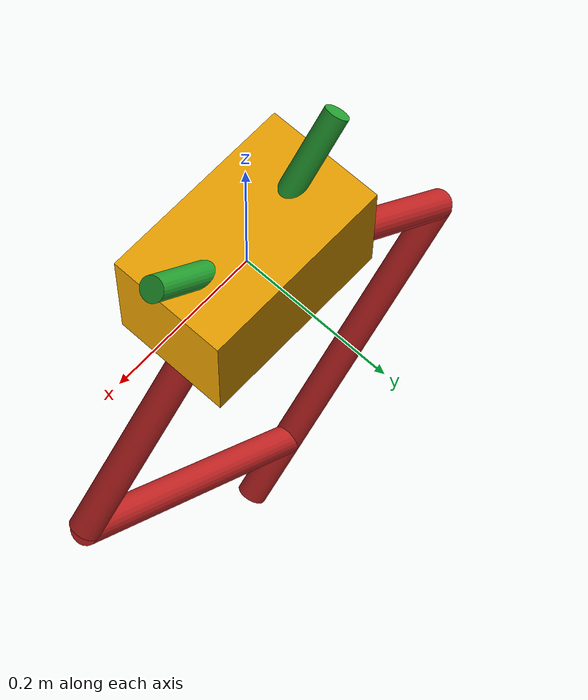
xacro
<?xml version="1.0"?>
<robot name="atrias"
       xmlns:sensor="http://playerstage.sourceforge.net/gazebo/xmlschema/#sensor"
       xmlns:controller="http://playerstage.sourceforge.net/gazebo/xmlschema/#controller"
       xmlns:joint="http://playerstage.sourceforge.net/gazebo/xmlschema/#slider"
			 xmlns:xacro="http://www.ros.org/wiki/xacro"
       xmlns:interface="http://playerstage.sourceforge.net/gazebo/xmlschema/#interface"
			 xmlns:model="http://playerstage.sourceforge.net/gazebo/xmlschema/#model"
			 xmlns:geo="http://willowgarage.com/xmlschema/#geo"
			 xmlns:geom="http://playerstage.sourceforge.net/gazebo/xmlschema/#geom"
			 xmlns:body="http://playerstage.sourceforge.net/gazebo/xmlschema/#body" >

	<include filename="atrias.urdf.xacro" />

  <xacro:atrias_robot></xacro:atrias_robot>

 	<gazebo>
		<controller:ecat_interface name="ecat_interface" plugin="libecat_interface.so">
			<alwaysOn> true </alwaysOn>
			<updateRate> 10000 </updateRate>
			<bodyName> body_link </bodyName>
			<motorAName> motorA_link </motorAName>
			<motorBName> motorB_link </motorBName>
			<legAName> legA_link </legAName>
			<legBName> legB_link </legBName>
		</controller:ecat_interface>
	</gazebo>

</robot>

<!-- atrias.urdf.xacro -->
<robot name="atrias_robot"
       xmlns:sensor="http://playerstage.sourceforge.net/gazebo/xmlschema/#sensor"
       xmlns:controller="http://playerstage.sourceforge.net/gazebo/xmlschema/#controller"
       xmlns:joint="http://playerstage.sourceforge.net/gazebo/xmlschema/#slider"
			 xmlns:xacro="http://www.ros.org/wiki/xacro"
       xmlns:interface="http://playerstage.sourceforge.net/gazebo/xmlschema/#interface"
			 xmlns:model="http://playerstage.sourceforge.net/gazebo/xmlschema/#model"
			 xmlns:geo="http://willowgarage.com/xmlschema/#geo"
			 xmlns:geom="http://playerstage.sourceforge.net/gazebo/xmlschema/#geom"
			 xmlns:body="http://playerstage.sourceforge.net/gazebo/xmlschema/#body" >

	<property name="M_PI" value="3.14159"/>
	<property name="SQRT_2" value="1.41421356"/>

	<property name="initial_height" value="0.9" />
	<property name="body_size" value="0.25 0.15 0.15" />

	<property name="visual_motor_length" value="0.4" />
	<property name="visual_motor_radius" value="0.015" />
	<property name="maximum_motor_torque" value="10000000" />
	<property name="maximum_motor_velocity" value="10000000" />
	<property name="motor_damping_coefficient" value="0.2" />

	<property name="leg_segment_radius" value="0.02" />
	<property name="A_length" value="0.4" />
	<property name="B_length" value="0.5" />
	<property name="C_length" value="0.5" />
	<property name="D_length" value="0.5" />

	<property name="spring_stiffness" value="500" />
	<property name="motor_damping" value="0" />
	<property name="leg_seg_damping" value="0" />

	<xacro:macro name="atrias_robot">

		<!--																	Body	 				 												-->

		<link name="body_link">
			<inertial>
				<mass value="24" />  <!-- From RC scale -->
				<origin xyz="0 0 0" />
				<inertia ixx="1.37" ixy="0" ixz="0"
				         iyy="1.37" iyz="0"
				         izz="1" />
			</inertial>
			<visual>
				<origin xyz="0 0 0" rpy="0 0 0" />
				<geometry>
				  <box size="${body_size}" />
				</geometry>
			</visual>
			<collision>
				<origin xyz="0 0 0" rpy="0 0 0" />
				<geometry>
				  <box size="${body_size}" />
				</geometry>
			</collision>
		</link>
		<gazebo reference="body_link">
			<material>Gazebo/BumpyMetal</material>
		</gazebo>

		<gazebo>
			<controller:position_body name="position_body" plugin="libposition_body.so">
				<alwaysOn> true </alwaysOn>
				<updateRate> 10000 </updateRate>
				<bodyName> body_link </bodyName>
			</controller:position_body>
		</gazebo>

		<!--																	Motor A				 												-->

		<joint name="hip_motorA_joint" type="revolute">
			<axis xyz="0 1 0" />
			<anchor xyz="0 0 0" />
			<origin xyz="0 0 0" rpy="0 0 0" />
			<parent link="body_link" />
			<child link="motorA_link" />
			<limit lower="${-M_PI/4-0.3054}" upper="${-M_PI/4+2.3562}" effort="10000000000000" velocity="100000000000000" />
		</joint>

		<link name="motorA_link">
			<inertial>
				<mass value="0.01"/>
				<origin xyz="0 0 0" />
				<inertia ixx="10" ixy="0" ixz="0"
				         iyy="10" iyz="0"
				         izz="10" />
			</inertial>
			<visual>
				<origin xyz="0 0 0" rpy="0 ${-M_PI/4} 0" />
				<geometry>
				  <cylinder length="${visual_motor_length}" radius="${visual_motor_radius}" />
				</geometry>
			</visual>
			<collision>
				<origin xyz="0 0 0" rpy="0 ${-M_PI/4} 0" />
				<geometry>
				  <box size="0 0 0" />
				</geometry>
			</collision>
		</link>
		<gazebo reference="motorA_link">
			<material> Gazebo/Green </material>
		</gazebo>

		<gazebo>
			<controller:joint_impedance name="motor_frictionA" plugin="libjoint_impedance.so">
				<alwaysOn> true </alwaysOn>
				<updateRate> 10000 </updateRate>
				<bodyName1> body_link </bodyName1>
				<bodyName2> motorA_link </bodyName2>
				<rotationalDamping> ${motor_damping} </rotationalDamping>
			</controller:joint_impedance>
		</gazebo>

		<gazebo>
			<controller:spring name="springA" plugin="libspring.so">
				<alwaysOn> true </alwaysOn>
				<updateRate> 10000 </updateRate>
				<bodyName1> motorA_link </bodyName1>
				<bodyName2> legA_link </bodyName2>
				<rotationalStiffness> ${spring_stiffness} </rotationalStiffness>
			</controller:spring>
		</gazebo>

		<!--																	Motor B				 												-->

		<joint name="hip_motorB_joint" type="revolute">
			<axis xyz="0 1 0" />
			<anchor xyz="0 0 0" />
			<origin xyz="0 0 0" rpy="0 0 0" />
			<parent link="body_link" />
			<child link="motorB_link"/>
			<limit lower="${-5*M_PI/4+2.8362}" upper="${-5*M_PI/4+5.4978}" effort="10000000000000" velocity="100000000000000" />
		</joint>

		<link name="motorB_link">
			<inertial>
				<mass value="0.01"/>
				<origin xyz="0 0 0" />
				<inertia ixx="10" ixy="0" ixz="0"
				         iyy="10" iyz="0"
				         izz="10" />
			</inertial>
			<visual>
				<origin xyz="0 0 0" rpy="0 ${M_PI/4} 0" />
				<geometry>
				  <cylinder length="${visual_motor_length}" radius="${visual_motor_radius}" />
				</geometry>
			</visual>
			<collision>
				<origin xyz="0 0 0" rpy="0 ${M_PI/4} 0" />
				<geometry>
				  <box size="0 0 0" />
				</geometry>
			</collision>
		</link>
		<gazebo reference="motorB_link">
			<material>Gazebo/Green</material>
		</gazebo>

		<gazebo>
			<controller:joint_impedance name="motor_frictionB" plugin="libjoint_impedance.so">
				<alwaysOn> true </alwaysOn>
				<updateRate> 10000 </updateRate>
				<bodyName1> body_link </bodyName1>
				<bodyName2> motorB_link </bodyName2>
				<rotationalDamping> ${motor_damping} </rotationalDamping>
			</controller:joint_impedance>
		</gazebo>

		<gazebo>
			<controller:spring name="springB" plugin="libspring.so">
				<alwaysOn> true </alwaysOn>
				<updateRate> 10000 </updateRate>
				<bodyName1> motorB_link </bodyName1>
				<bodyName2> legB_link </bodyName2>
				<rotationalStiffness> ${spring_stiffness} </rotationalStiffness>
			</controller:spring>
		</gazebo>

		<!--																	 Leg A 				 												-->

		<joint name="body_legA_joint" type="revolute">
			<axis xyz="0 1 0" />
			<anchor xyz="0 0 0" />
			<origin xyz="0 0 0" rpy="0 0 0" />
			<parent link="body_link" />
			<child link="legA_link"/>
			<limit lower="${-M_PI/4-0.6545}" upper="${-M_PI/4+2.7053}" effort="1000000000000" velocity="100000000000000" />
		</joint>

		<link name="legA_link">
			<inertial>
				<mass value="0.66149"/>
				<origin xyz="${A_length/SQRT_2/2} 0 ${-A_length/SQRT_2/2}" />
				<inertia ixx="0.01910" ixy="0" ixz="0"
				         iyy="0.01910" iyz="0"
				         izz="0.01910" />
			</inertial>
			<visual>
				<origin xyz="${A_length/SQRT_2/2} 0 ${-A_length/SQRT_2/2}" rpy="0 ${-M_PI/4} 0" />
				<geometry>
				  <cylinder length="${A_length}" radius="${leg_segment_radius}" />
				</geometry>
			</visual>
			<collision>
				<origin xyz="${A_length/SQRT_2/2} 0 ${-A_length/SQRT_2/2}" rpy="0 ${-M_PI/4} 0" />
				<geometry>
					<cylinder length="${A_length}" radius="${leg_segment_radius}" />
				</geometry>
			</collision>
		</link>
		<gazebo reference="legA_link">
			<material>Gazebo/Red</material>
		</gazebo>

		<gazebo>
			<controller:joint_impedance name="leg_seg_frictionA" plugin="libjoint_impedance.so">
				<alwaysOn> true </alwaysOn>
				<updateRate> 10000 </updateRate>
				<bodyName1> body_link </bodyName1>
				<bodyName2> legA_link </bodyName2>
				<rotationalDamping> ${leg_seg_damping} </rotationalDamping>
			</controller:joint_impedance>
		</gazebo>

		<!--																	 Leg B 				 					 							-->

		<joint name="body_legB_joint" type="revolute">
			<axis xyz="0 -1 0" />
			<anchor xyz="0 0 0" />
			<origin xyz="0 0 0" rpy="0 0 0" />
			<parent link="body_link" />
			<child link="legB_link"/>
			<limit lower="${-5*M_PI/4+2.4871}" upper="${-5*M_PI/4+5.4978}" effort="100000000000" velocity="100000000000000" />
		</joint>

		<link name="legB_link">
			<inertial>
				<mass value="0.68292"/>
				<origin xyz="${-B_length/SQRT_2/2} 0 ${-B_length/SQRT_2/2}" />
				<inertia ixx="0.02116" ixy="0" ixz="0"
				         iyy="0.02116" iyz="0"
				         izz="0.02116" />
			</inertial>
			<visual>
				<origin xyz="${-B_length/SQRT_2/2} 0 ${-B_length/SQRT_2/2}" rpy="0 ${M_PI/4} 0" />
				<geometry>
				  <cylinder length="${B_length}" radius="${leg_segment_radius}" />
				</geometry>
			</visual>
			<collision>
				<origin xyz="${-B_length/SQRT_2/2} 0 ${-B_length/SQRT_2/2}" rpy="0 ${M_PI/4} 0" />
				<geometry>
					<cylinder length="${B_length}" radius="${leg_segment_radius}" />
				</geometry>
			</collision>
		</link>
		<gazebo reference="legB_link">
			<material>Gazebo/Red</material>
		</gazebo>

		<gazebo>
			<controller:joint_impedance name="leg_seg_frictionB" plugin="libjoint_impedance.so">
				<alwaysOn> true </alwaysOn>
				<updateRate> 10000 </updateRate>
				<bodyName1> body_link </bodyName1>
				<bodyName2> legB_link </bodyName2>
				<rotationalDamping> ${leg_seg_damping} </rotationalDamping>
			</controller:joint_impedance>
		</gazebo>

		<!--																	 Leg C 				 									 			-->

		<joint name="legA_legC_joint" type="revolute">
			<axis xyz="0 1 0" />
			<anchor xyz="${A_length/SQRT_2} 0 ${-A_length/SQRT_2}" />
			<origin xyz="${A_length/SQRT_2} 0 ${-A_length/SQRT_2}" rpy="0 0 0" />
			<parent link="legA_link" />
			<child link="legC_link"/>
			<limit lower="${-M_PI/2}" upper="${M_PI/2}" effort="10000000000000" velocity="100000000000000" />
		</joint>

		<link name="legC_link">
			<inertial>
				<mass value="0.19126"/>
				<origin xyz="${-C_length/SQRT_2/2} 0 ${-C_length/SQRT_2/2}" />
				<inertia ixx="0.00633" ixy="0" ixz="0"
				         iyy="0.00633" iyz="0"
				         izz="0.00633" />
			</inertial>
			<visual>
				<origin xyz="${-C_length/SQRT_2/2} 0 ${-C_length/SQRT_2/2}" rpy="0 ${M_PI/4} 0" />
				<geometry>
				  <cylinder length="${C_length}" radius="${leg_segment_radius}" />
				</geometry>
			</visual>
			<collision>
				<origin xyz="${-C_length/SQRT_2/2} 0 ${-C_length/SQRT_2/2}" rpy="0 ${M_PI/4} 0" />
				<geometry>
					<cylinder length="${C_length}" radius="${leg_segment_radius}" />
				</geometry>
			</collision>
		</link>
		<gazebo reference="legC_link">
			<material>Gazebo/Red</material>
		</gazebo>

		<!--																	 Leg D 				 					 							-->

		<joint name="legB_legD_joint" type="revolute">
			<axis xyz="0 1 0" />
			<anchor xyz="${-B_length/SQRT_2} 0 ${-B_length/SQRT_2}" />
			<origin xyz="${-B_length/SQRT_2} 0 ${-B_length/SQRT_2}" rpy="0 0 0" />
			<parent link="legB_link" />
			<child link="legD_link"/>
			<limit lower="${-M_PI/2}" upper="${M_PI/2}" effort="10000000000000" velocity="100000000000000" />
		</joint>

		<link name="legD_link">
			<inertial>
				<mass value="0.42493"/>
				<origin xyz="${D_length/SQRT_2/2} 0 ${-D_length/SQRT_2/2}" />
				<inertia ixx="0.01243" ixy="0" ixz="0"
				         iyy="0.01243" iyz="0"
				         izz="0.01243" />
			</inertial>
			<visual>
				<origin xyz="${D_length/SQRT_2/2} 0 ${-D_length/SQRT_2/2}" rpy="0 ${-M_PI/4} 0" />
				<geometry>
				  <cylinder length="${D_length}" radius="${leg_segment_radius}" />
				</geometry>
			</visual>
			<collision>
				<origin xyz="${D_length/SQRT_2/2} 0 ${-D_length/SQRT_2/2}" rpy="0 ${-M_PI/4} 0" />
				<geometry>
					<cylinder length="${D_length}" radius="${leg_segment_radius}" />
				</geometry>
			</collision>
		</link>
		<gazebo reference="legD_link">
			<material>Gazebo/Red</material>
		</gazebo>

		<gazebo>
			<joint:hinge name="legC_legD_joint">
				<body1>legC_link</body1>
				<body2>legD_link</body2>
				<anchor>legC_link</anchor>
				<axis>0 1 0</axis>
				<anchorOffset>${-C_length/SQRT_2} 0 ${-C_length/SQRT_2}</anchorOffset>
			</joint:hinge>
		</gazebo>

	</xacro:macro>

</robot>
